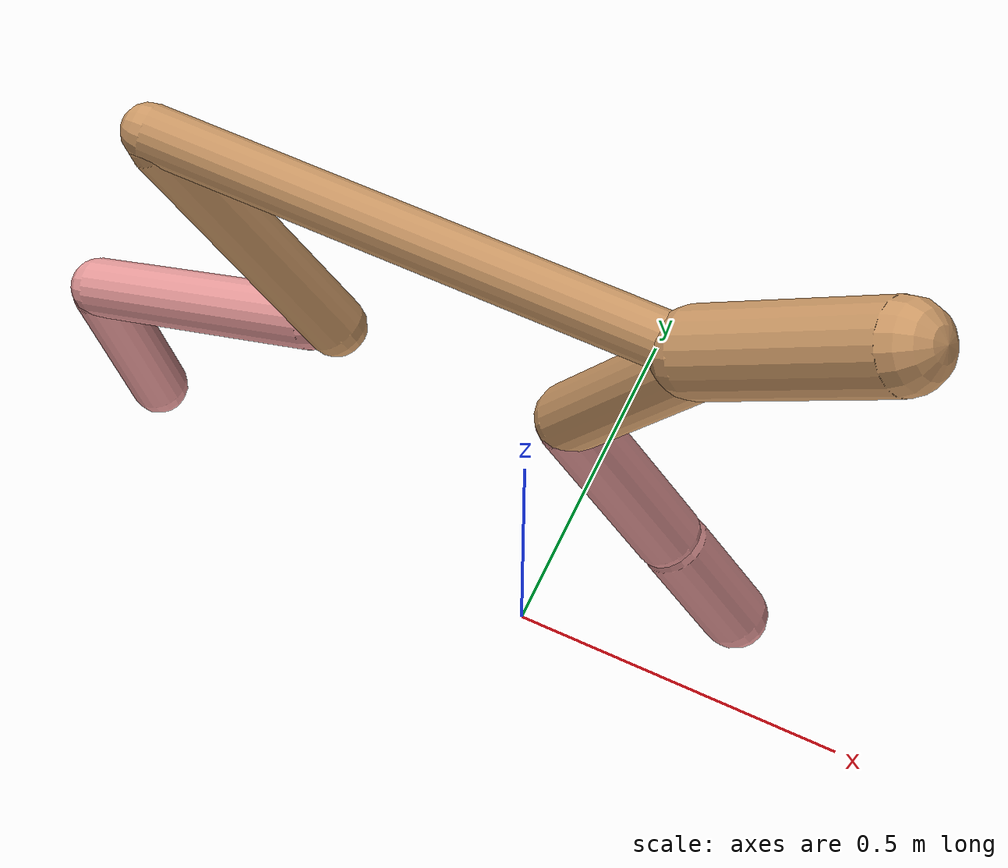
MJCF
<mujoco model="cheetah">
  <compiler angle="radian" coordinate="local" inertiafromgeom="true" settotalmass="14" />
  <default>
    <joint armature=".1" damping=".01" limited="true" solimplimit="0 .8 .03" solreflimit=".02 1" stiffness="8" />
    <geom conaffinity="0" condim="3" contype="1" friction="0.8 .1 .1" rgba="0.8 0.6 .4 1" solimp="0.0 0.8 0.01" solref="0.02 1" />
    <motor ctrllimited="true" ctrlrange="-1 1" />
  </default>
  <size nstack="300000" nuser_geom="1" />
  <option gravity="0 0 -9.81" timestep="0.01" />
  <worldbody>
    <body name="torso" pos="0.0 0.0 0.9865640815374644">
      <joint armature="0" axis="1 0 0" damping="0" limited="false" name="ignorex" pos="0 0 0" stiffness="0" type="slide" />
      <joint armature="0" axis="0 0 1" damping="0" limited="false" name="ignorez" pos="0 0 0" stiffness="0" type="slide" />
      <joint armature="0" axis="0 1 0" damping="0" limited="false" name="ignorey" pos="0 0 0" stiffness="0" type="hinge" />
      <geom fromto="-0.5 0.0 0.0 0.22527157483928284 0.0 0.0" name="torso" size="0.03633756542701737" type="capsule" />
      <geom axisangle="0 1 0 .87" name="head" pos="0.3252715748392828 0.0 0.1" size="0.05669433144194392 0.15" type="capsule" />

      <body name="bthigh" pos="-.5 0 0">
        <joint axis="0 1 0" damping="6" name="bthigh" pos="0 0 0" range="-.52 1.05" stiffness="240" type="hinge" />
        <geom axisangle="0 1 0 -3.8" name="bthigh" pos="0.1214699784805323 0.0 -0.15791097202469198" size="0.0402788770403939 0.18021338290079011" type="capsule" />
        <body name="bshin" pos="0.2029399569610646 0.0 -0.30582194404938395">
          <joint axis="0 1 0" damping="4.5" name="bshin" pos="0 0 0" range="-.785 .785" stiffness="180" type="hinge" />
          <geom axisangle="0 1 0 -2.03" name="bshin" pos="-0.17258186946919812 0.0 -0.08629093473459906" rgba="0.9 0.6 0.6 1" size="0.0402788770403939 0.186427637483576" type="capsule" />
          <body name="bfoot" pos="-0.34516373893839625 0.0 -0.17258186946919812">
            <joint axis="0 1 0" damping="3" name="bfoot" pos="0 0 0" range="-.4 .785" stiffness="120" type="hinge" />
            <geom axisangle="0 1 0 -.27" name="bfoot" pos="0.03674497874449271 0.0 -0.11880876460719308" rgba="0.9 0.6 0.6 1" size="0.0402788770403939 0.11682798615637428" type="capsule" />
            <inertial mass="10" />
          </body>
        </body>
      </body>
      <body name="fthigh" pos="0.22527157483928284 0.0 0.0">
        <joint axis="0 1 0" damping="4.5" name="fthigh" pos="0 0 0" range="-1.5 0.8" stiffness="180" type="hinge" />
        <geom axisangle="0 1 0 .52" name="fthigh" pos="-0.08501555819844553 0.0 -0.1457409569116209" size="0.04584128187634816 0.1628004001774612" type="capsule" />
        <body name="fshin" pos="-0.17003111639689106 0.0 -0.2914819138232418">
          <joint axis="0 1 0" damping="3" name="fshin" pos="0 0 0" range="-1.2 1.1" stiffness="120" type="hinge" />
          <geom axisangle="0 1 0 -.6" name="fshin" pos="0.07890580749847097 0.0 -0.10925419499788287" rgba="0.9 0.6 0.6 1" size="0.04584128187634816 0.12975069487827734" type="capsule" />
          <body name="ffoot" pos="0.15781161499694193 0.0 -0.21850838999576574">
            <joint axis="0 1 0" damping="1.5" name="ffoot" pos="0 0 0" range="-3.1 -0.3" stiffness="60" type="hinge" />
            <geom axisangle="0 1 0 -.6" name="ffoot" pos="0.05348146980007488 0.0 -0.08319339746678316" rgba="0.9 0.6 0.6 1" size="0.04584128187634816 0.08568442114603221" type="capsule" />
            <inertial mass="10" />
          </body>
        </body>
      </body>
    </body>
  </worldbody>
  <actuator>
    <motor gear="120" joint="bthigh" name="bthigh" />
    <motor gear="90" joint="bshin" name="bshin" />
    <motor gear="60" joint="bfoot" name="bfoot" />
    <motor gear="120" joint="fthigh" name="fthigh" />
    <motor gear="60" joint="fshin" name="fshin" />
    <motor gear="30" joint="ffoot" name="ffoot" />
  </actuator>
</mujoco>
